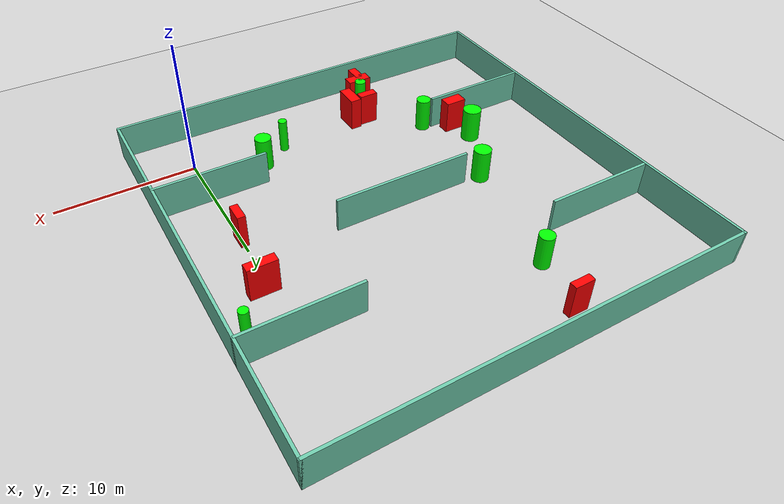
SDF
<sdf version="1.7">
 <world name="default">
  <light name="sun" type="directional">
   <pose>0 0 10 0 -0 0</pose>
   <diffuse>0.8 0.8 0.8 1</diffuse>
   <specular>0.2 0.2 0.2 1</specular>
   <attenuation>
    <range>1000</range>
    <constant>0.9</constant>
    <linear>0.01</linear>
    <quadratic>0.001</quadratic>
   </attenuation>
   <direction>-0.5 0.1 -0.9</direction>
   <spot><inner_angle>0</inner_angle><outer_angle>0</outer_angle><falloff>0</falloff></spot>
  </light>
  <model name="ground_plane">
   <static>1</static>
   <link name="link">
    <collision name="collision">
     <geometry><plane><normal>0 0 1</normal><size>100 100</size></plane></geometry>
     <surface>
      <contact><collide_bitmask>65535</collide_bitmask></contact>
      <friction><ode><mu>100</mu><mu2>50</mu2></ode></friction>
     </surface>
    </collision>
    <visual name="visual">
     <cast_shadows>0</cast_shadows>
     <geometry><plane><normal>0 0 1</normal><size>100 100</size></plane></geometry>
     <material>
      <script><uri>file://media/materials/scripts/gazebo.material</uri><name>Gazebo/Grey</name></script>
     </material>
    </visual>
   </link>
  </model>
  <gravity>0 0 -9.8</gravity>
  <magnetic_field>6e-06 2.3e-05 -4.2e-05</magnetic_field>
  <atmosphere type="adiabatic"/>
  <physics type="ode">
   <max_step_size>0.001</max_step_size>
   <real_time_factor>1</real_time_factor>
   <real_time_update_rate>1000</real_time_update_rate>
  </physics>
  <scene><ambient>0.4 0.4 0.4 1</ambient><background>0.7 0.7 0.7 1</background><shadows>1</shadows></scene>
  <spherical_coordinates>
   <surface_model>EARTH_WGS84</surface_model>
   <latitude_deg>0</latitude_deg>
   <longitude_deg>0</longitude_deg>
   <elevation>0</elevation>
   <heading_deg>0</heading_deg>
  </spherical_coordinates>
  <model name="my_base_walls">
   <link name="Wall_10">
    <collision name="Wall_10_Collision">
     <geometry><box><size>8.2 0.2 2.5</size></box></geometry>
     <pose>0 0 1.25 0 -0 0</pose>
    </collision>
    <visual name="Wall_10_Visual">
     <pose>0 0 1.25 0 -0 0</pose>
     <geometry><box><size>8.2 0.2 2.5</size></box></geometry>
     <material>
      <script><uri>file://media/materials/scripts/gazebo.material</uri><name>Gazebo/Grey</name></script>
      <ambient>0.435294 0.796078 0.67451 1</ambient>
     </material>
     <meta><layer>0</layer></meta>
    </visual>
    <pose>-11 -7 0 0 -0 0</pose>
   </link>
   <link name="Wall_12">
    <collision name="Wall_12_Collision">
     <geometry><box><size>8.2 0.2 2.5</size></box></geometry>
     <pose>0 0 1.25 0 -0 0</pose>
    </collision>
    <visual name="Wall_12_Visual">
     <pose>0 0 1.25 0 -0 0</pose>
     <geometry><box><size>8.2 0.2 2.5</size></box></geometry>
     <material>
      <script><uri>file://media/materials/scripts/gazebo.material</uri><name>Gazebo/Grey</name></script>
      <ambient>0.435294 0.796078 0.67451 1</ambient>
     </material>
     <meta><layer>0</layer></meta>
    </visual>
    <pose>-11 7 0 0 -0 0</pose>
   </link>
   <link name="Wall_14">
    <collision name="Wall_14_Collision">
     <geometry><box><size>8.2 0.2 2.5</size></box></geometry>
     <pose>0 0 1.25 0 -0 0</pose>
    </collision>
    <visual name="Wall_14_Visual">
     <pose>0 0 1.25 0 -0 0</pose>
     <geometry><box><size>8.2 0.2 2.5</size></box></geometry>
     <material>
      <script><uri>file://media/materials/scripts/gazebo.material</uri><name>Gazebo/Grey</name></script>
      <ambient>0.435294 0.796078 0.67451 1</ambient>
     </material>
     <meta><layer>0</layer></meta>
    </visual>
    <pose>11 7 0 0 -0 3.14159</pose>
   </link>
   <link name="Wall_16">
    <collision name="Wall_16_Collision">
     <geometry><box><size>10.2 0.2 2.5</size></box></geometry>
     <pose>0 0 1.25 0 -0 0</pose>
    </collision>
    <visual name="Wall_16_Visual">
     <pose>0 0 1.25 0 -0 0</pose>
     <geometry><box><size>10.2 0.2 2.5</size></box></geometry>
     <material>
      <script><uri>file://media/materials/scripts/gazebo.material</uri><name>Gazebo/Grey</name></script>
      <ambient>0.435294 0.796078 0.67451 1</ambient>
     </material>
     <meta><layer>0</layer></meta>
    </visual>
    <pose>0 0 0 0 -0 3.14159</pose>
   </link>
   <link name="Wall_2">
    <collision name="Wall_2_Collision">
     <geometry><box><size>30.2 0.2 2.5</size></box></geometry>
     <pose>0 0 1.25 0 -0 0</pose>
    </collision>
    <visual name="Wall_2_Visual">
     <pose>0 0 1.25 0 -0 0</pose>
     <geometry><box><size>30.2 0.2 2.5</size></box></geometry>
     <material>
      <script><uri>file://media/materials/scripts/gazebo.material</uri><name>Gazebo/Grey</name></script>
      <ambient>0.435294 0.796078 0.67451 1</ambient>
     </material>
     <meta><layer>0</layer></meta>
    </visual>
    <pose>0 -15 0 0 -0 3.14159</pose>
   </link>
   <link name="Wall_3">
    <collision name="Wall_3_Collision">
     <geometry><box><size>30.2 0.2 2.5</size></box></geometry>
     <pose>0 0 1.25 0 -0 0</pose>
    </collision>
    <visual name="Wall_3_Visual">
     <pose>0 0 1.25 0 -0 0</pose>
     <geometry><box><size>30.2 0.2 2.5</size></box></geometry>
     <material>
      <script><uri>file://media/materials/scripts/gazebo.material</uri><name>Gazebo/Grey</name></script>
      <ambient>0.435294 0.796078 0.67451 1</ambient>
     </material>
     <meta><layer>0</layer></meta>
    </visual>
    <pose>-15 0 0 0 -0 1.5708</pose>
   </link>
   <link name="Wall_4">
    <collision name="Wall_4_Collision">
     <geometry><box><size>30.2 0.2 2.5</size></box></geometry>
     <pose>0 0 1.25 0 -0 0</pose>
    </collision>
    <visual name="Wall_4_Visual">
     <pose>0 0 1.25 0 -0 0</pose>
     <geometry><box><size>30.2 0.2 2.5</size></box></geometry>
     <material>
      <script><uri>file://media/materials/scripts/gazebo.material</uri><name>Gazebo/Grey</name></script>
      <ambient>0.435294 0.796078 0.67451 1</ambient>
     </material>
     <meta><layer>0</layer></meta>
    </visual>
    <pose>0 15 0 0 -0 0</pose>
   </link>
   <link name="Wall_6">
    <collision name="Wall_6_Collision">
     <geometry><box><size>30.2 0.2 2.5</size></box></geometry>
     <pose>0 0 1.25 0 -0 0</pose>
    </collision>
    <visual name="Wall_6_Visual">
     <pose>0 0 1.25 0 -0 0</pose>
     <geometry><box><size>30.2 0.2 2.5</size></box></geometry>
     <material>
      <script><uri>file://media/materials/scripts/gazebo.material</uri><name>Gazebo/Grey</name></script>
      <ambient>0.435294 0.796078 0.67451 1</ambient>
     </material>
     <meta><layer>0</layer></meta>
    </visual>
    <pose>15 0 0 0 -0 1.5708</pose>
   </link>
   <link name="Wall_8">
    <collision name="Wall_8_Collision">
     <geometry><box><size>8.2 0.2 2.5</size></box></geometry>
     <pose>0 0 1.25 0 -0 0</pose>
    </collision>
    <visual name="Wall_8_Visual">
     <pose>0 0 1.25 0 -0 0</pose>
     <geometry><box><size>8.2 0.2 2.5</size></box></geometry>
     <material>
      <script><uri>file://media/materials/scripts/gazebo.material</uri><name>Gazebo/Grey</name></script>
      <ambient>0.435294 0.796078 0.67451 1</ambient>
     </material>
     <meta><layer>0</layer></meta>
    </visual>
    <pose>11 -7 0 0 -0 3.14159</pose>
   </link>
   <static>1</static>
   <pose>-11 11 0 0 -0 0</pose>
  </model>
  <model name="cylinder1">
   <static>1</static>
   <link name="link">
    <inertial>
     <mass>1</mass>
     <inertia><ixx>0.5</ixx><ixy>0</ixy><ixz>0</ixz><iyy>0.5</iyy><iyz>0</iyz><izz>1</izz></inertia>
    </inertial>
    <collision name="collision">
     <geometry><cylinder><radius>0.5954958533405511</radius><length>2.5</length></cylinder></geometry>
    </collision>
    <visual name="visual">
     <geometry><cylinder><radius>0.5954958533405511</radius><length>2.5</length></cylinder></geometry>
     <material>
      <ambient>0 1 0 1</ambient>
      <diffuse>0 1 0 1</diffuse>
      <specular>0.1 0.1 0.1 1</specular>
      <emissive>0 0 0 0</emissive>
     </material>
    </visual>
   </link>
   <pose>-4.609077328993747 2.252444732675734 1.25 0 0 0</pose>
  </model>
  <model name="cylinder2">
   <static>1</static>
   <link name="link">
    <inertial>
     <mass>1</mass>
     <inertia><ixx>0.5</ixx><ixy>0</ixy><ixz>0</ixz><iyy>0.5</iyy><iyz>0</iyz><izz>1</izz></inertia>
    </inertial>
    <collision name="collision">
     <geometry><cylinder><radius>0.671719682062181</radius><length>2.5</length></cylinder></geometry>
    </collision>
    <visual name="visual">
     <geometry><cylinder><radius>0.671719682062181</radius><length>2.5</length></cylinder></geometry>
     <material>
      <ambient>0 1 0 1</ambient>
      <diffuse>0 1 0 1</diffuse>
      <specular>0.1 0.1 0.1 1</specular>
      <emissive>0 0 0 0</emissive>
     </material>
    </visual>
   </link>
   <pose>-19.720806080591174 6.718738838704557 1.25 0 0 0</pose>
  </model>
  <model name="cylinder3">
   <static>1</static>
   <link name="link">
    <inertial>
     <mass>1</mass>
     <inertia><ixx>0.5</ixx><ixy>0</ixy><ixz>0</ixz><iyy>0.5</iyy><iyz>0</iyz><izz>1</izz></inertia>
    </inertial>
    <collision name="collision">
     <geometry><cylinder><radius>0.3218808997355726</radius><length>2.5</length></cylinder></geometry>
    </collision>
    <visual name="visual">
     <geometry><cylinder><radius>0.3218808997355726</radius><length>2.5</length></cylinder></geometry>
     <material>
      <ambient>0 1 0 1</ambient>
      <diffuse>0 1 0 1</diffuse>
      <specular>0.1 0.1 0.1 1</specular>
      <emissive>0 0 0 0</emissive>
     </material>
    </visual>
   </link>
   <pose>2.8185559456107008 16.560518869984122 1.25 0 0 0</pose>
  </model>
  <model name="cylinder4">
   <static>1</static>
   <link name="link">
    <inertial>
     <mass>1</mass>
     <inertia><ixx>0.5</ixx><ixy>0</ixy><ixz>0</ixz><iyy>0.5</iyy><iyz>0</iyz><izz>1</izz></inertia>
    </inertial>
    <collision name="collision">
     <geometry><cylinder><radius>0.5342203624553574</radius><length>2.5</length></cylinder></geometry>
    </collision>
    <visual name="visual">
     <geometry><cylinder><radius>0.5342203624553574</radius><length>2.5</length></cylinder></geometry>
     <material>
      <ambient>0 1 0 1</ambient>
      <diffuse>0 1 0 1</diffuse>
      <specular>0.1 0.1 0.1 1</specular>
      <emissive>0 0 0 0</emissive>
     </material>
    </visual>
   </link>
   <pose>-17.31569377406333 3.7495458267637636 1.25 0 0 0</pose>
  </model>
  <model name="cylinder5">
   <static>1</static>
   <link name="link">
    <inertial>
     <mass>1</mass>
     <inertia><ixx>0.5</ixx><ixy>0</ixy><ixz>0</ixz><iyy>0.5</iyy><iyz>0</iyz><izz>1</izz></inertia>
    </inertial>
    <collision name="collision">
     <geometry><cylinder><radius>0.314929807699413</radius><length>2.5</length></cylinder></geometry>
    </collision>
    <visual name="visual">
     <geometry><cylinder><radius>0.314929807699413</radius><length>2.5</length></cylinder></geometry>
     <material>
      <ambient>0 1 0 1</ambient>
      <diffuse>0 1 0 1</diffuse>
      <specular>0.1 0.1 0.1 1</specular>
      <emissive>0 0 0 0</emissive>
     </material>
    </visual>
   </link>
   <pose>-6.7166890450007095 1.0122796742305118 1.25 0 0 0</pose>
  </model>
  <model name="cylinder6">
   <static>1</static>
   <link name="link">
    <inertial>
     <mass>1</mass>
     <inertia><ixx>0.5</ixx><ixy>0</ixy><ixz>0</ixz><iyy>0.5</iyy><iyz>0</iyz><izz>1</izz></inertia>
    </inertial>
    <collision name="collision">
     <geometry><cylinder><radius>0.5294493149784905</radius><length>2.5</length></cylinder></geometry>
    </collision>
    <visual name="visual">
     <geometry><cylinder><radius>0.5294493149784905</radius><length>2.5</length></cylinder></geometry>
     <material>
      <ambient>0 1 0 1</ambient>
      <diffuse>0 1 0 1</diffuse>
      <specular>0.1 0.1 0.1 1</specular>
      <emissive>0 0 0 0</emissive>
     </material>
    </visual>
   </link>
   <pose>-15.448990653829014 20.196317994648897 1.25 0 0 0</pose>
  </model>
  <model name="cylinder7">
   <static>1</static>
   <link name="link">
    <inertial>
     <mass>1</mass>
     <inertia><ixx>0.5</ixx><ixy>0</ixy><ixz>0</ixz><iyy>0.5</iyy><iyz>0</iyz><izz>1</izz></inertia>
    </inertial>
    <collision name="collision">
     <geometry><cylinder><radius>0.42184130671455816</radius><length>2.5</length></cylinder></geometry>
    </collision>
    <visual name="visual">
     <geometry><cylinder><radius>0.42184130671455816</radius><length>2.5</length></cylinder></geometry>
     <material>
      <ambient>0 1 0 1</ambient>
      <diffuse>0 1 0 1</diffuse>
      <specular>0.1 0.1 0.1 1</specular>
      <emissive>0 0 0 0</emissive>
     </material>
    </visual>
   </link>
   <pose>-14.407023687626237 -0.9747431824160215 1.25 0 0 0</pose>
  </model>
  <model name="cylinder8">
   <static>1</static>
   <link name="link">
    <inertial>
     <mass>1</mass>
     <inertia><ixx>0.5</ixx><ixy>0</ixy><ixz>0</ixz><iyy>0.5</iyy><iyz>0</iyz><izz>1</izz></inertia>
    </inertial>
    <collision name="collision">
     <geometry><cylinder><radius>0.6317501094339586</radius><length>2.5</length></cylinder></geometry>
    </collision>
    <visual name="visual">
     <geometry><cylinder><radius>0.6317501094339586</radius><length>2.5</length></cylinder></geometry>
     <material>
      <ambient>0 1 0 1</ambient>
      <diffuse>0 1 0 1</diffuse>
      <specular>0.1 0.1 0.1 1</specular>
      <emissive>0 0 0 0</emissive>
     </material>
    </visual>
   </link>
   <pose>-17.342856702926348 11.201485467192192 1.25 0 0 0</pose>
  </model>
  <model name="box1">
   <static>1</static>
   <link name="link">
    <inertial>
     <mass>1</mass>
     <inertia><ixx>0.083</ixx><ixy>0</ixy><ixz>0</ixz><iyy>0.083</iyy><iyz>0</iyz><izz>0.083</izz></inertia>
    </inertial>
    <collision name="collision">
     <geometry><box><size>1.4349817101997258 0.5266283098100752 2.5</size></box></geometry>
    </collision>
    <visual name="visual">
     <geometry><box><size>1.4349817101997258 0.5266283098100752 2.5</size></box></geometry>
     <material>
      <ambient>1 0 0 1</ambient>
      <diffuse>1 0 0 1</diffuse>
      <specular>0.1 0.1 0.1 1</specular>
      <emissive>0 0 0 0</emissive>
     </material>
    </visual>
    <sensor name="my_contact" type="contact">
     <contact><collision>box_collision</collision><topic>__default_topic__</topic></contact>
    </sensor>
   </link>
   <pose>-14.646989667225654 24.141283074340613 1.25 0 0 0</pose>
  </model>
  <model name="box2">
   <static>1</static>
   <link name="link">
    <inertial>
     <mass>1</mass>
     <inertia><ixx>0.083</ixx><ixy>0</ixy><ixz>0</ixz><iyy>0.083</iyy><iyz>0</iyz><izz>0.083</izz></inertia>
    </inertial>
    <collision name="collision">
     <geometry><box><size>0.8336961818430646 1.8478318441459383 2.5</size></box></geometry>
    </collision>
    <visual name="visual">
     <geometry><box><size>0.8336961818430646 1.8478318441459383 2.5</size></box></geometry>
     <material>
      <ambient>1 0 0 1</ambient>
      <diffuse>1 0 0 1</diffuse>
      <specular>0.1 0.1 0.1 1</specular>
      <emissive>0 0 0 0</emissive>
     </material>
    </visual>
    <sensor name="my_contact" type="contact">
     <contact><collision>box_collision</collision><topic>__default_topic__</topic></contact>
    </sensor>
   </link>
   <pose>-12.767739276109193 0.3978429234045713 1.25 0 0 0</pose>
  </model>
  <model name="box3">
   <static>1</static>
   <link name="link">
    <inertial>
     <mass>1</mass>
     <inertia><ixx>0.083</ixx><ixy>0</ixy><ixz>0</ixz><iyy>0.083</iyy><iyz>0</iyz><izz>0.083</izz></inertia>
    </inertial>
    <collision name="collision">
     <geometry><box><size>0.5603156471578747 1.3541072186040746 2.5</size></box></geometry>
    </collision>
    <visual name="visual">
     <geometry><box><size>0.5603156471578747 1.3541072186040746 2.5</size></box></geometry>
     <material>
      <ambient>1 0 0 1</ambient>
      <diffuse>1 0 0 1</diffuse>
      <specular>0.1 0.1 0.1 1</specular>
      <emissive>0 0 0 0</emissive>
     </material>
    </visual>
    <sensor name="my_contact" type="contact">
     <contact><collision>box_collision</collision><topic>__default_topic__</topic></contact>
    </sensor>
   </link>
   <pose>-0.014377719944619116 8.782534301670577 1.25 0 0 0</pose>
  </model>
  <model name="box4">
   <static>1</static>
   <link name="link">
    <inertial>
     <mass>1</mass>
     <inertia><ixx>0.083</ixx><ixy>0</ixy><ixz>0</ixz><iyy>0.083</iyy><iyz>0</iyz><izz>0.083</izz></inertia>
    </inertial>
    <collision name="collision">
     <geometry><box><size>1.5641969189761864 0.8780348689693709 2.5</size></box></geometry>
    </collision>
    <visual name="visual">
     <geometry><box><size>1.5641969189761864 0.8780348689693709 2.5</size></box></geometry>
     <material>
      <ambient>1 0 0 1</ambient>
      <diffuse>1 0 0 1</diffuse>
      <specular>0.1 0.1 0.1 1</specular>
      <emissive>0 0 0 0</emissive>
     </material>
    </visual>
    <sensor name="my_contact" type="contact">
     <contact><collision>box_collision</collision><topic>__default_topic__</topic></contact>
    </sensor>
   </link>
   <pose>-19.27917884054301 4.874550958637757 1.25 0 0 0</pose>
  </model>
  <model name="box5">
   <static>1</static>
   <link name="link">
    <inertial>
     <mass>1</mass>
     <inertia><ixx>0.083</ixx><ixy>0</ixy><ixz>0</ixz><iyy>0.083</iyy><iyz>0</iyz><izz>0.083</izz></inertia>
    </inertial>
    <collision name="collision">
     <geometry><box><size>2.032725304451926 0.6753655765928538 2.5</size></box></geometry>
    </collision>
    <visual name="visual">
     <geometry><box><size>2.032725304451926 0.6753655765928538 2.5</size></box></geometry>
     <material>
      <ambient>1 0 0 1</ambient>
      <diffuse>1 0 0 1</diffuse>
      <specular>0.1 0.1 0.1 1</specular>
      <emissive>0 0 0 0</emissive>
     </material>
    </visual>
    <sensor name="my_contact" type="contact">
     <contact><collision>box_collision</collision><topic>__default_topic__</topic></contact>
    </sensor>
   </link>
   <pose>0.5277216898793284 13.64398863888582 1.25 0 0 0</pose>
  </model>
  <model name="box6">
   <static>1</static>
   <link name="link">
    <inertial>
     <mass>1</mass>
     <inertia><ixx>0.083</ixx><ixy>0</ixy><ixz>0</ixz><iyy>0.083</iyy><iyz>0</iyz><izz>0.083</izz></inertia>
    </inertial>
    <collision name="collision">
     <geometry><box><size>0.6492212182518236 1.3525785580303284 2.5</size></box></geometry>
    </collision>
    <visual name="visual">
     <geometry><box><size>0.6492212182518236 1.3525785580303284 2.5</size></box></geometry>
     <material>
      <ambient>1 0 0 1</ambient>
      <diffuse>1 0 0 1</diffuse>
      <specular>0.1 0.1 0.1 1</specular>
      <emissive>0 0 0 0</emissive>
     </material>
    </visual>
    <sensor name="my_contact" type="contact">
     <contact><collision>box_collision</collision><topic>__default_topic__</topic></contact>
    </sensor>
   </link>
   <pose>-14.74501754835688 -2.312608578970113 1.25 0 0 0</pose>
  </model>
  <model name="box7">
   <static>1</static>
   <link name="link">
    <inertial>
     <mass>1</mass>
     <inertia><ixx>0.083</ixx><ixy>0</ixy><ixz>0</ixz><iyy>0.083</iyy><iyz>0</iyz><izz>0.083</izz></inertia>
    </inertial>
    <collision name="collision">
     <geometry><box><size>1.80691372954594 0.806217400580661 2.5</size></box></geometry>
    </collision>
    <visual name="visual">
     <geometry><box><size>1.80691372954594 0.806217400580661 2.5</size></box></geometry>
     <material>
      <ambient>1 0 0 1</ambient>
      <diffuse>1 0 0 1</diffuse>
      <specular>0.1 0.1 0.1 1</specular>
      <emissive>0 0 0 0</emissive>
     </material>
    </visual>
    <sensor name="my_contact" type="contact">
     <contact><collision>box_collision</collision><topic>__default_topic__</topic></contact>
    </sensor>
   </link>
   <pose>-14.476206226394456 -1.5114832661126845 1.25 0 0 0</pose>
  </model>
  <model name="box8">
   <static>1</static>
   <link name="link">
    <inertial>
     <mass>1</mass>
     <inertia><ixx>0.083</ixx><ixy>0</ixy><ixz>0</ixz><iyy>0.083</iyy><iyz>0</iyz><izz>0.083</izz></inertia>
    </inertial>
    <collision name="collision">
     <geometry><box><size>1.3857826436441263 0.6256022304113199 2.5</size></box></geometry>
    </collision>
    <visual name="visual">
     <geometry><box><size>1.3857826436441263 0.6256022304113199 2.5</size></box></geometry>
     <material>
      <ambient>1 0 0 1</ambient>
      <diffuse>1 0 0 1</diffuse>
      <specular>0.1 0.1 0.1 1</specular>
      <emissive>0 0 0 0</emissive>
     </material>
    </visual>
    <sensor name="my_contact" type="contact">
     <contact><collision>box_collision</collision><topic>__default_topic__</topic></contact>
    </sensor>
   </link>
   <pose>-13.997815525212175 0.8270814873643149 1.25 0 0 0</pose>
  </model>
 </world>
</sdf>
